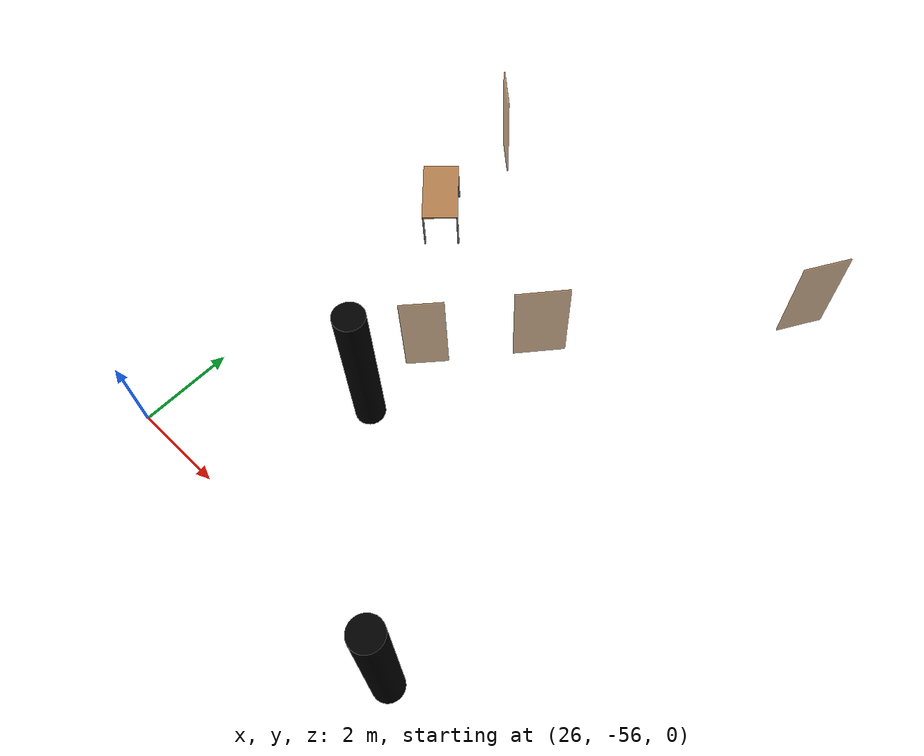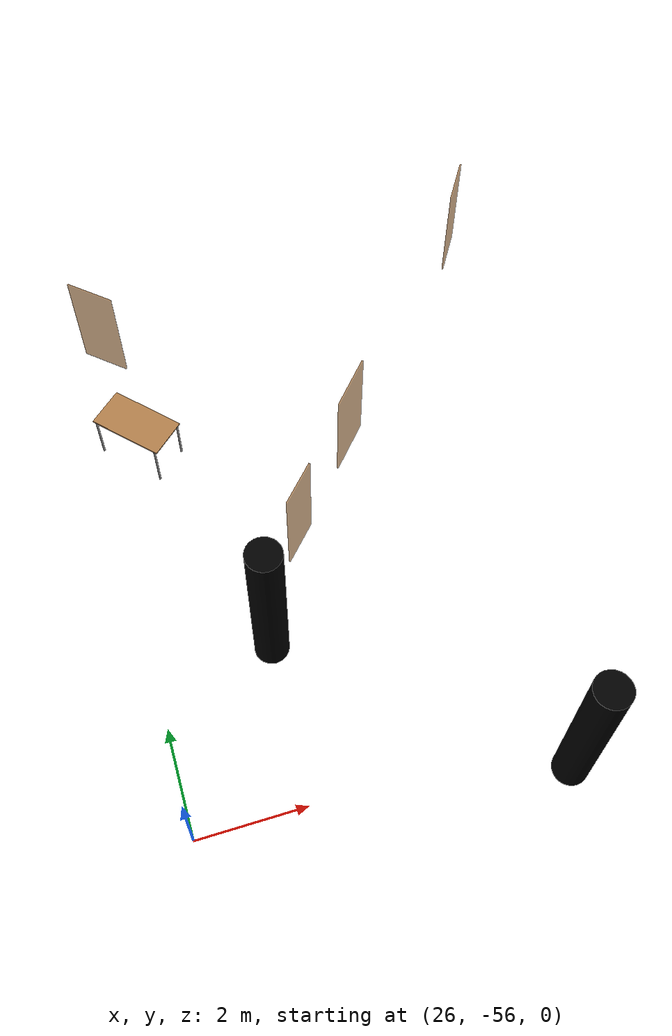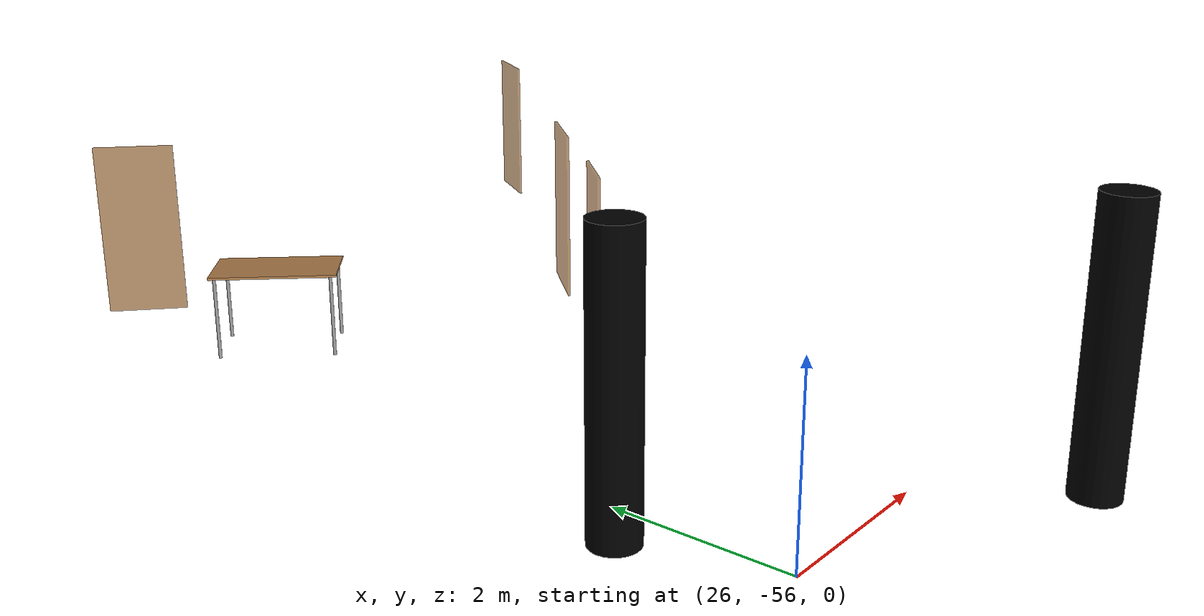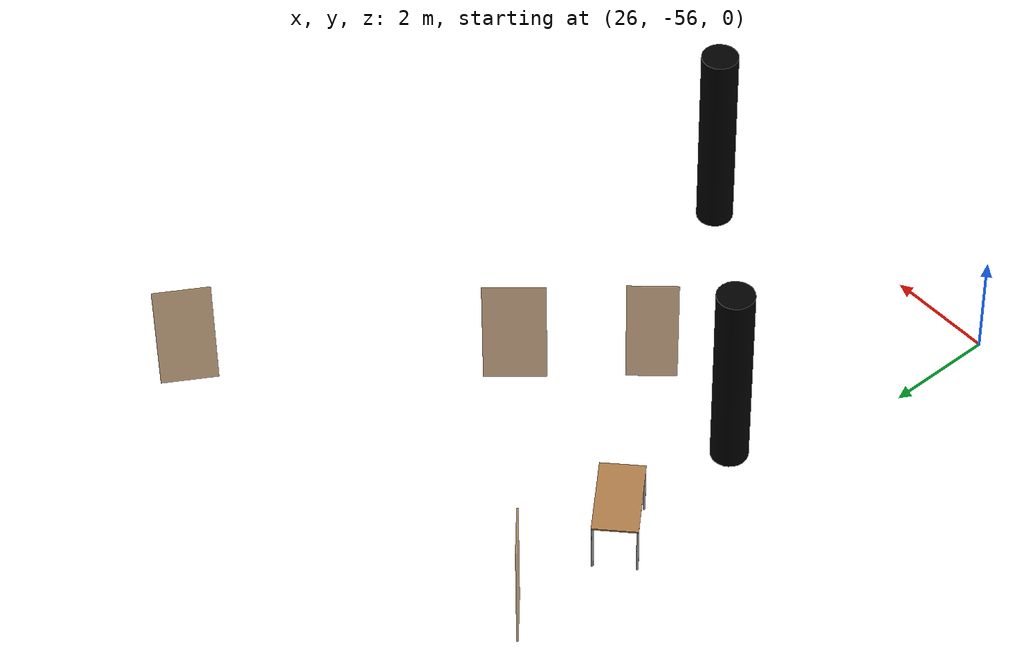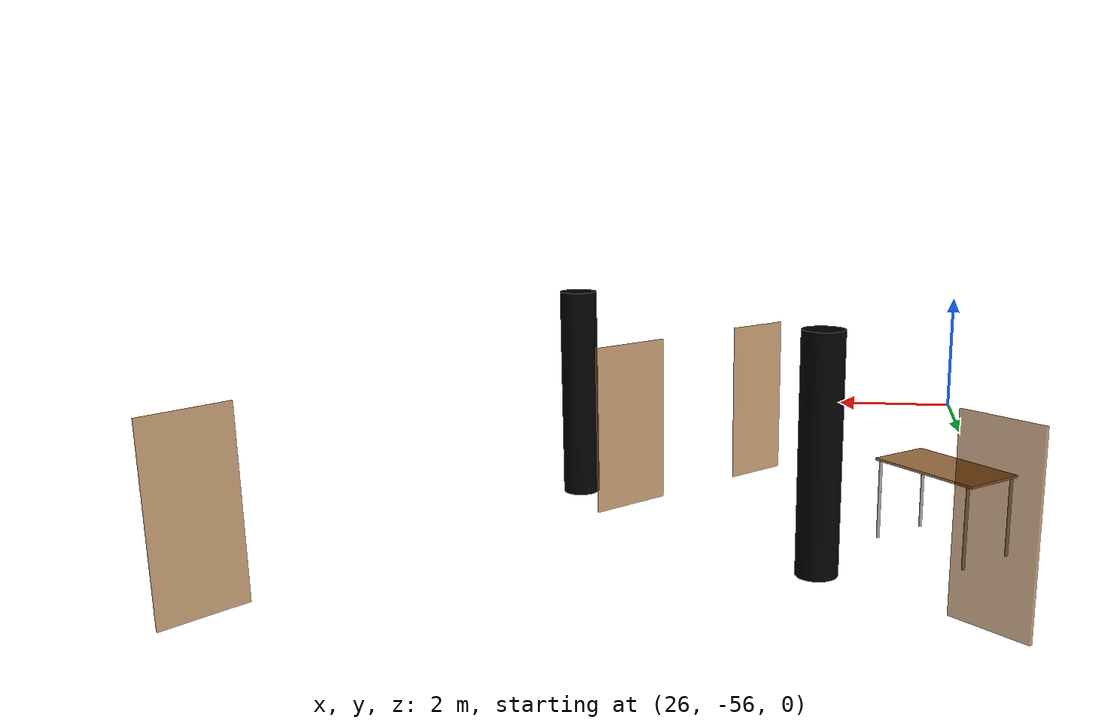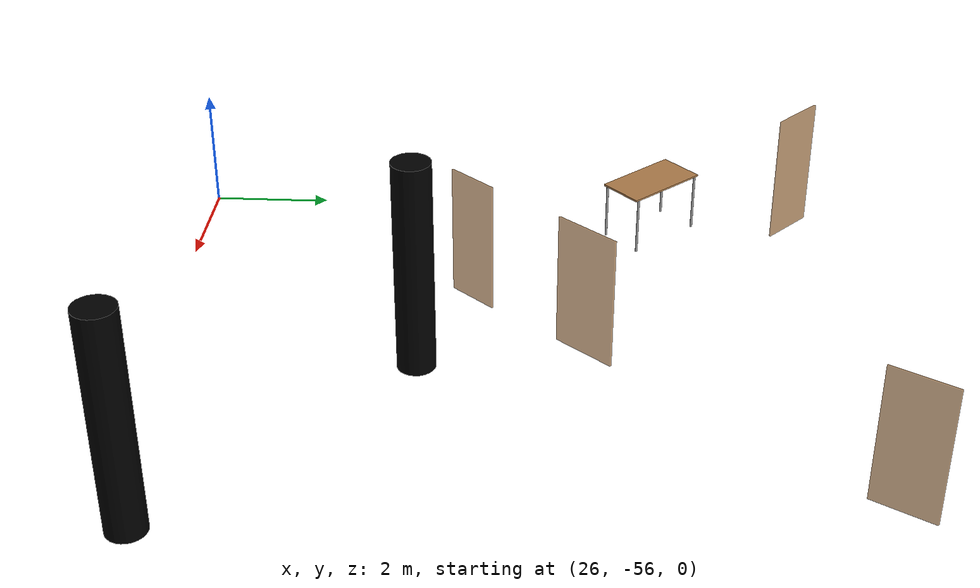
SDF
<sdf version="1.7">
 <world name="world">
  <model name="OpenRobotics/Table_2">
   <static>1</static>
   <link name="link">
    <collision name="surface">
     <pose>0 0 1 0 -0 0</pose>
     <geometry><box><size>1.5 0.8 0.03</size></box></geometry>
     <surface><friction><ode><mu>0.6</mu><mu2>0.6</mu2></ode></friction></surface>
    </collision>
    <visual name="visual1">
     <pose>0 0 1 0 -0 0</pose>
     <geometry><box><size>1.5 0.8 0.03</size></box></geometry>
     <material>
      <script><uri>file://media/materials/scripts/gazebo.material</uri><name>Gazebo/Wood</name></script>
     </material>
    </visual>
    <collision name="front_left_leg_c">
     <pose>0.68 0.38 0.5 0 -0 0</pose>
     <geometry><cylinder><radius>0.02</radius><length>1</length></cylinder></geometry>
    </collision>
    <visual name="front_left_leg">
     <pose>0.68 0.38 0.5 0 -0 0</pose>
     <geometry><cylinder><radius>0.02</radius><length>1</length></cylinder></geometry>
     <material>
      <script><uri>file://media/materials/scripts/gazebo.material</uri><name>Gazebo/Grey</name></script>
     </material>
    </visual>
    <collision name="front_right_leg_c">
     <pose>0.68 -0.38 0.5 0 -0 0</pose>
     <geometry><cylinder><radius>0.02</radius><length>1</length></cylinder></geometry>
    </collision>
    <visual name="front_right_leg">
     <pose>0.68 -0.38 0.5 0 -0 0</pose>
     <geometry><cylinder><radius>0.02</radius><length>1</length></cylinder></geometry>
     <material>
      <script><uri>file://media/materials/scripts/gazebo.material</uri><name>Gazebo/Grey</name></script>
     </material>
    </visual>
    <collision name="back_right_leg_c">
     <pose>-0.68 -0.38 0.5 0 -0 0</pose>
     <geometry><cylinder><radius>0.02</radius><length>1</length></cylinder></geometry>
    </collision>
    <visual name="back_right_leg">
     <pose>-0.68 -0.38 0.5 0 -0 0</pose>
     <geometry><cylinder><radius>0.02</radius><length>1</length></cylinder></geometry>
     <material>
      <script><uri>file://media/materials/scripts/gazebo.material</uri><name>Gazebo/Grey</name></script>
     </material>
    </visual>
    <collision name="back_left_leg_c">
     <pose>-0.68 0.38 0.5 0 -0 0</pose>
     <geometry><cylinder><radius>0.02</radius><length>1</length></cylinder></geometry>
    </collision>
    <visual name="back_left_leg">
     <pose>-0.68 0.38 0.5 0 -0 0</pose>
     <geometry><cylinder><radius>0.02</radius><length>1</length></cylinder></geometry>
     <material>
      <script><uri>file://media/materials/scripts/gazebo.material</uri><name>Gazebo/Grey</name></script>
     </material>
    </visual>
   </link>
   <pose>26.7964 -48.1502 0 0 -0 2.3292</pose>
  </model>
  <model name="D44">
   <pose>34.5058 -44.8919 -0 0 -0 1.02515</pose>
   <link name="right">
    <pose>0 0 1.11 0 -0 0</pose>
    <visual name="right_visual">
     <geometry><box><size>1.02742 0.03 2.2</size></box></geometry>
     <material><ambient>0.5 0.25 0 0.6</ambient><diffuse>0.5 0.25 0 0.6</diffuse></material>
    </visual>
    <collision name="right_collision">
     <geometry><box><size>1.02742 0.03 2.2</size></box></geometry>
     <surface><contact><collide_bitmask>2</collide_bitmask></contact></surface>
    </collision>
    <inertial>
     <mass>50</mass>
     <inertia><ixx>20.1704</ixx><iyy>24.565</iyy><izz>4.40204</izz><ixy>0</ixy><ixz>0</ixz><iyz>0</iyz></inertia>
    </inertial>
   </link>
   <joint name="right_joint" type="revolute">
    <parent>world</parent>
    <child>right</child>
    <axis>
     <xyz>0 0 -1</xyz>
     <limit><lower>0</lower><upper>1.57</upper></limit>
     <dynamics><spring_reference>0</spring_reference><spring_stiffness>0</spring_stiffness></dynamics>
    </axis>
    <pose>0.518709 0 0 0 -0 0</pose>
   </joint>
   <plugin name="door_D44" filename="libdoor.so">
    <v_max_door>0.5</v_max_door>
    <a_max_door>0.3</a_max_door>
    <a_nom_door>0.15</a_nom_door>
    <dx_min_door>0.01</dx_min_door>
    <f_max_door>500.0</f_max_door>
    <door name="D44" type="SwingDoor" left_joint_name="empty_joint" right_joint_name="right_joint"/>
   </plugin>
  </model>
  <model name="D45">
   <pose>26.529 -45.6976 0 0 -0 2.4143</pose>
   <link name="right">
    <pose>0 0 1.11 0 -0 0</pose>
    <visual name="right_visual">
     <geometry><box><size>0.981221 0.03 2.2</size></box></geometry>
     <material><ambient>0.5 0.25 0 0.6</ambient><diffuse>0.5 0.25 0 0.6</diffuse></material>
    </visual>
    <collision name="right_collision">
     <geometry><box><size>0.981221 0.03 2.2</size></box></geometry>
     <surface><contact><collide_bitmask>2</collide_bitmask></contact></surface>
    </collision>
    <inertial>
     <mass>50</mass>
     <inertia><ixx>20.1704</ixx><iyy>24.1783</iyy><izz>4.01539</izz><ixy>0</ixy><ixz>0</ixz><iyz>0</iyz></inertia>
    </inertial>
   </link>
   <joint name="right_joint" type="revolute">
    <parent>world</parent>
    <child>right</child>
    <axis>
     <xyz>0 0 -1</xyz>
     <limit><lower>0</lower><upper>1.57</upper></limit>
     <dynamics><spring_reference>0</spring_reference><spring_stiffness>0</spring_stiffness></dynamics>
    </axis>
    <pose>0.495611 0 0 0 -0 0</pose>
   </joint>
   <plugin name="door_D45" filename="libdoor.so">
    <v_max_door>0.5</v_max_door>
    <a_max_door>0.3</a_max_door>
    <a_nom_door>0.15</a_nom_door>
    <dx_min_door>0.01</dx_min_door>
    <f_max_door>500.0</f_max_door>
    <door name="D45" type="SwingDoor" left_joint_name="empty_joint" right_joint_name="right_joint"/>
   </plugin>
  </model>
  <model name="D46">
   <pose>30.8095 -49.2646 0 0 -0 -2.28278</pose>
   <link name="right">
    <pose>0 0 1.11 0 -0 0</pose>
    <visual name="right_visual">
     <geometry><box><size>1.1245 0.03 2.2</size></box></geometry>
     <material><ambient>0.5 0.25 0 0.6</ambient><diffuse>0.5 0.25 0 0.6</diffuse></material>
    </visual>
    <collision name="right_collision">
     <geometry><box><size>1.1245 0.03 2.2</size></box></geometry>
     <surface><contact><collide_bitmask>2</collide_bitmask></contact></surface>
    </collision>
    <inertial>
     <mass>50</mass>
     <inertia><ixx>20.1704</ixx><iyy>25.4354</iyy><izz>5.27245</izz><ixy>0</ixy><ixz>0</ixz><iyz>0</iyz></inertia>
    </inertial>
   </link>
   <joint name="right_joint" type="revolute">
    <parent>world</parent>
    <child>right</child>
    <axis>
     <xyz>0 0 -1</xyz>
     <limit><lower>0</lower><upper>1.57</upper></limit>
     <dynamics><spring_reference>0</spring_reference><spring_stiffness>0</spring_stiffness></dynamics>
    </axis>
    <pose>0.567248 0 0 0 -0 0</pose>
   </joint>
   <plugin name="door_D46" filename="libdoor.so">
    <v_max_door>0.5</v_max_door>
    <a_max_door>0.3</a_max_door>
    <a_nom_door>0.15</a_nom_door>
    <dx_min_door>0.01</dx_min_door>
    <f_max_door>500.0</f_max_door>
    <door name="D46" type="SwingDoor" left_joint_name="empty_joint" right_joint_name="right_joint"/>
   </plugin>
  </model>
  <model name="D47">
   <pose>29.2579 -51.0965 0 0 -0 0.835643</pose>
   <link name="right">
    <pose>0 0 1.11 0 -0 0</pose>
    <visual name="right_visual">
     <geometry><box><size>0.912573 0.03 2.2</size></box></geometry>
     <material><ambient>0.5 0.25 0 0.6</ambient><diffuse>0.5 0.25 0 0.6</diffuse></material>
    </visual>
    <collision name="right_collision">
     <geometry><box><size>0.912573 0.03 2.2</size></box></geometry>
     <surface><contact><collide_bitmask>2</collide_bitmask></contact></surface>
    </collision>
    <inertial>
     <mass>50</mass>
     <inertia><ixx>20.1704</ixx><iyy>23.6366</iyy><izz>3.47371</izz><ixy>0</ixy><ixz>0</ixz><iyz>0</iyz></inertia>
    </inertial>
   </link>
   <joint name="right_joint" type="revolute">
    <parent>world</parent>
    <child>right</child>
    <axis>
     <xyz>0 0 1</xyz>
     <limit><lower>0</lower><upper>1.57</upper></limit>
     <dynamics><spring_reference>0</spring_reference><spring_stiffness>0</spring_stiffness></dynamics>
    </axis>
    <pose>0.461287 0 0 0 -0 0</pose>
   </joint>
   <plugin name="door_D47" filename="libdoor.so">
    <v_max_door>0.5</v_max_door>
    <a_max_door>0.3</a_max_door>
    <a_nom_door>0.15</a_nom_door>
    <dx_min_door>0.01</dx_min_door>
    <f_max_door>500.0</f_max_door>
    <door name="D47" type="SwingDoor" left_joint_name="empty_joint" right_joint_name="right_joint"/>
   </plugin>
  </model>
  <model name="CylinderBlock_9">
   <link name="link">
    <inertial>
     <mass>1</mass>
     <inertia><ixx>1</ixx><ixy>0</ixy><ixz>0</ixz><iyy>1</iyy><iyz>0</iyz><izz>1</izz></inertia>
    </inertial>
    <visual name="visual">
     <geometry><cylinder><radius>0.35</radius><length>4.0</length></cylinder></geometry>
     <material>
      <shader type="pixel"><normal_map>__default__</normal_map></shader>
      <script><name>ModelPreview_1::link::visual_MATERIAL_</name><uri>__default__</uri></script>
      <ambient>0 0 0 1</ambient>
      <diffuse>0 0 0 1</diffuse>
      <specular>0 0 0 1</specular>
      <emissive>0 0 0 1</emissive>
     </material>
    </visual>
    <collision name="collision">
     <geometry><cylinder><radius>0.35</radius><length>4.0</length></cylinder></geometry>
     <surface>
      <friction>
       <ode><mu>1</mu><mu2>1</mu2><fdir1>0 0 0</fdir1><slip1>0</slip1><slip2>0</slip2></ode>
       <torsional>
        <coefficient>1</coefficient>
        <patch_radius>0</patch_radius>
        <surface_radius>0</surface_radius>
        <use_patch_radius>1</use_patch_radius>
        <ode><slip>0</slip></ode>
       </torsional>
      </friction>
      <bounce><restitution_coefficient>0</restitution_coefficient><threshold>1e+06</threshold></bounce>
      <contact>
       <collide_without_contact>0</collide_without_contact>
       <collide_without_contact_bitmask>1</collide_without_contact_bitmask>
       <collide_bitmask>1</collide_bitmask>
       <ode>
        <soft_cfm>0</soft_cfm>
        <soft_erp>0.2</soft_erp>
        <kp>1e+13</kp>
        <kd>1</kd>
        <max_vel>0.01</max_vel>
        <min_depth>0</min_depth>
       </ode>
       <bullet>
        <split_impulse>1</split_impulse>
        <split_impulse_penetration_threshold>-0.01</split_impulse_penetration_threshold>
        <soft_cfm>0</soft_cfm>
        <soft_erp>0.2</soft_erp>
        <kp>1e+13</kp>
        <kd>1</kd>
       </bullet>
      </contact>
     </surface>
    </collision>
   </link>
   <static>1</static>
   <pose>33.0784 -56.1693 0 0 -0 0</pose>
  </model>
  <model name="CylinderBlock_10">
   <link name="link">
    <inertial>
     <mass>1</mass>
     <inertia><ixx>1</ixx><ixy>0</ixy><ixz>0</ixz><iyy>1</iyy><iyz>0</iyz><izz>1</izz></inertia>
    </inertial>
    <visual name="visual">
     <geometry><cylinder><radius>0.35</radius><length>4.0</length></cylinder></geometry>
     <material>
      <shader type="pixel"><normal_map>__default__</normal_map></shader>
      <script><name>ModelPreview_1::link::visual_MATERIAL_</name><uri>__default__</uri></script>
      <ambient>0 0 0 1</ambient>
      <diffuse>0 0 0 1</diffuse>
      <specular>0 0 0 1</specular>
      <emissive>0 0 0 1</emissive>
     </material>
    </visual>
    <collision name="collision">
     <geometry><cylinder><radius>0.35</radius><length>4.0</length></cylinder></geometry>
     <surface>
      <friction>
       <ode><mu>1</mu><mu2>1</mu2><fdir1>0 0 0</fdir1><slip1>0</slip1><slip2>0</slip2></ode>
       <torsional>
        <coefficient>1</coefficient>
        <patch_radius>0</patch_radius>
        <surface_radius>0</surface_radius>
        <use_patch_radius>1</use_patch_radius>
        <ode><slip>0</slip></ode>
       </torsional>
      </friction>
      <bounce><restitution_coefficient>0</restitution_coefficient><threshold>1e+06</threshold></bounce>
      <contact>
       <collide_without_contact>0</collide_without_contact>
       <collide_without_contact_bitmask>1</collide_without_contact_bitmask>
       <collide_bitmask>1</collide_bitmask>
       <ode>
        <soft_cfm>0</soft_cfm>
        <soft_erp>0.2</soft_erp>
        <kp>1e+13</kp>
        <kd>1</kd>
        <max_vel>0.01</max_vel>
        <min_depth>0</min_depth>
       </ode>
       <bullet>
        <split_impulse>1</split_impulse>
        <split_impulse_penetration_threshold>-0.01</split_impulse_penetration_threshold>
        <soft_cfm>0</soft_cfm>
        <soft_erp>0.2</soft_erp>
        <kp>1e+13</kp>
        <kd>1</kd>
       </bullet>
      </contact>
     </surface>
    </collision>
   </link>
   <static>1</static>
   <pose>28.3189 -52.1775 0 0 -0 0</pose>
  </model>
 </world>
</sdf>
